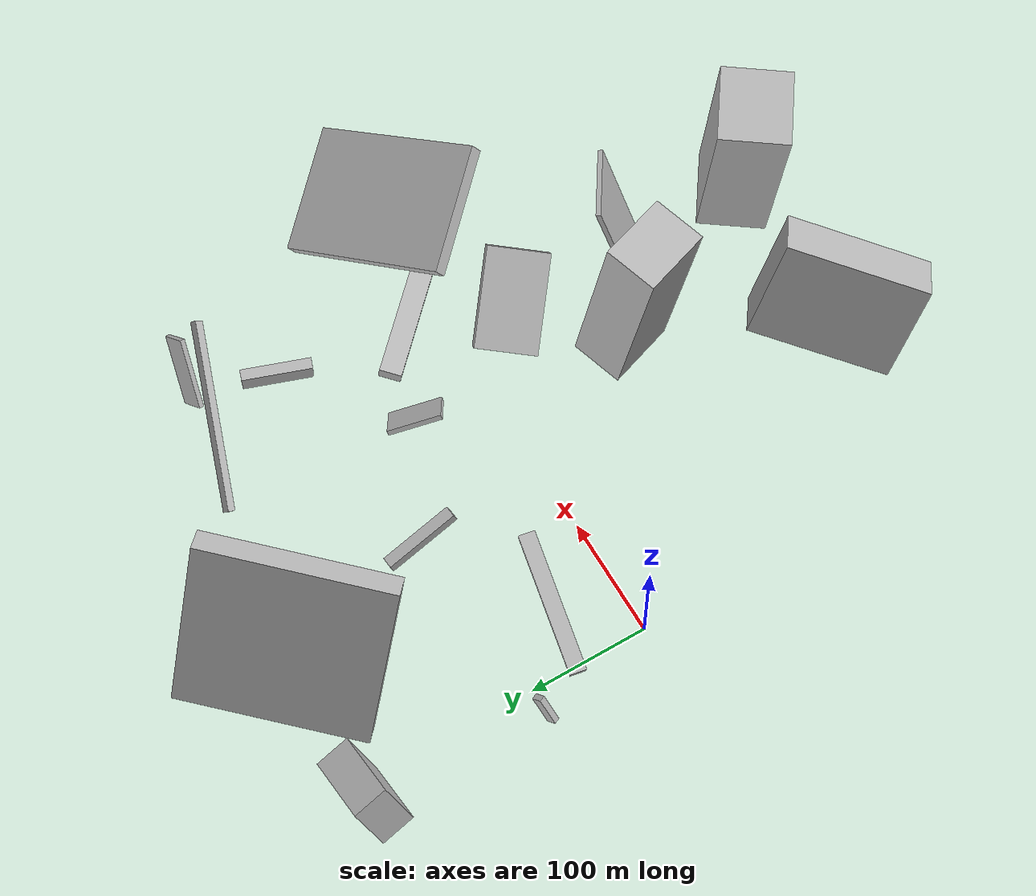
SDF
<sdf version="1.6">
 <world name="default">
  <scene>
   <sky><clouds><speed>12</speed></clouds></sky>
   <ambient>0.4 0.4 0.4 1</ambient>
   <background>0.7 0.7 0.7 1</background>
   <shadows>1</shadows>
  </scene>
  <gravity>0 0 -9.8066</gravity>
  <magnetic_field>6e-06 2.3e-05 -4.2e-05</magnetic_field>
  <physics default="0" name="default_physics" type="ode">
   <ode>
    <solver>
     <type>quick</type>
     <iters>10</iters>
     <sor>1.0</sor>
     <use_dynamic_moi_rescaling>0</use_dynamic_moi_rescaling>
    </solver>
    <constraints>
     <cfm>0</cfm>
     <erp>0.2</erp>
     <contact_max_correcting_vel>100</contact_max_correcting_vel>
     <contact_surface_layer>0.001</contact_surface_layer>
    </constraints>
   </ode>
   <max_step_size>0.004</max_step_size>
   <real_time_factor>1</real_time_factor>
   <real_time_update_rate>250</real_time_update_rate>
  </physics>
  <light name="sun" type="directional">
   <pose>0 0 10 0 0 0</pose>
   <diffuse>0.8 0.8 0.8 1</diffuse>
   <specular>0.2 0.2 0.2 1</specular>
   <attenuation>
    <range>1000</range>
    <constant>0.9</constant>
    <linear>0.01</linear>
    <quadratic>0.001</quadratic>
   </attenuation>
   <direction>-0.5 0.1 -0.9</direction>
  </light>
  <model name="building_1">
   <static>0</static>
   <pose>144.06554316331273 -285.0393407273974 20.557583342746845 1.6673200679724427 -0.23788246221843423 2.192089391238347</pose>
   <link name="link">
    <gravity>0</gravity>
    <pose>0 0 14.5 0 0 0</pose>
    <collision name="collision"><geometry><box><size>4 34 29</size></box></geometry></collision>
    <visual name="visual">
     <cast_shadows>0</cast_shadows>
     <geometry><box><size>4 34 29</size></box></geometry>
     <material>
      <script>
       <uri>model://HANNAS_wall/materials/scripts</uri>
       <uri>model://HANNAS_wall/materials/textures</uri>
       <name>vrc/HANNAS_wall</name>
      </script>
     </material>
    </visual>
   </link>
  </model>
  <model name="building_2">
   <static>0</static>
   <pose>355.446683232042 43.35744427238893 69.85210948404222 -1.2020113602157423 -0.42680287770415803 -2.554378521825107</pose>
   <link name="link">
    <gravity>0</gravity>
    <pose>0 0 51.5 0 0 0</pose>
    <collision name="collision"><geometry><box><size>150 12 103</size></box></geometry></collision>
    <visual name="visual">
     <cast_shadows>0</cast_shadows>
     <geometry><box><size>150 12 103</size></box></geometry>
     <material>
      <script>
       <uri>model://HANNAS_wall/materials/scripts</uri>
       <uri>model://HANNAS_wall/materials/textures</uri>
       <name>vrc/HANNAS_wall</name>
      </script>
     </material>
    </visual>
   </link>
  </model>
  <model name="building_3">
   <static>0</static>
   <pose>339.1404586242422 167.40391221170665 17.862097346216853 1.5828814717228803 -0.23100107456263266 -0.3331681251825361</pose>
   <link name="link">
    <gravity>0</gravity>
    <pose>0 0 28.5 0 0 0</pose>
    <collision name="collision"><geometry><box><size>9 25 57</size></box></geometry></collision>
    <visual name="visual">
     <cast_shadows>0</cast_shadows>
     <geometry><box><size>9 25 57</size></box></geometry>
     <material>
      <script>
       <uri>model://HANNAS_wall/materials/scripts</uri>
       <uri>model://HANNAS_wall/materials/textures</uri>
       <name>vrc/HANNAS_wall</name>
      </script>
     </material>
    </visual>
   </link>
  </model>
  <model name="building_4">
   <static>0</static>
   <pose>45.40919244431496 193.94430265775216 83.16667262906707 1.4446398337526434 -0.43803129549741576 2.4631247510847873</pose>
   <link name="link">
    <gravity>0</gravity>
    <pose>0 0 75.0 0 0 0</pose>
    <collision name="collision"><geometry><box><size>20 150 150</size></box></geometry></collision>
    <visual name="visual">
     <cast_shadows>0</cast_shadows>
     <geometry><box><size>20 150 150</size></box></geometry>
     <material>
      <script>
       <uri>model://HANNAS_wall/materials/scripts</uri>
       <uri>model://HANNAS_wall/materials/textures</uri>
       <name>vrc/HANNAS_wall</name>
      </script>
     </material>
    </visual>
   </link>
  </model>
  <model name="building_5">
   <static>0</static>
   <pose>370.1755689908143 -27.22185725013969 38.62904509164919 1.156230760620394 -1.4028140543516339 -1.9204796750713937</pose>
   <link name="link">
    <gravity>0</gravity>
    <pose>0 0 71.5 0 0 0</pose>
    <collision name="collision"><geometry><box><size>9 18 143</size></box></geometry></collision>
    <visual name="visual">
     <cast_shadows>0</cast_shadows>
     <geometry><box><size>9 18 143</size></box></geometry>
     <material>
      <script>
       <uri>model://HANNAS_wall/materials/scripts</uri>
       <uri>model://HANNAS_wall/materials/textures</uri>
       <name>vrc/HANNAS_wall</name>
      </script>
     </material>
    </visual>
   </link>
  </model>
  <model name="building_6">
   <static>0</static>
   <pose>286.6925635139877 -144.96020046405283 72.94835882348437 -0.09964875886765767 -1.3177549750232243 1.0947226266429262</pose>
   <link name="link">
    <gravity>0</gravity>
    <pose>0 0 2.0 0 0 0</pose>
    <collision name="collision"><geometry><box><size>114 59 4</size></box></geometry></collision>
    <visual name="visual">
     <cast_shadows>0</cast_shadows>
     <geometry><box><size>114 59 4</size></box></geometry>
     <material>
      <script>
       <uri>model://HANNAS_wall/materials/scripts</uri>
       <uri>model://HANNAS_wall/materials/textures</uri>
       <name>vrc/HANNAS_wall</name>
      </script>
     </material>
    </visual>
   </link>
  </model>
  <model name="building_7">
   <static>0</static>
   <pose>175.93852212318262 -81.8488428875617 107.62385818573408 0.13902266245292688 0.051289616728787714 -1.2189937352650215</pose>
   <link name="link">
    <gravity>0</gravity>
    <pose>0 0 75.0 0 0 0</pose>
    <collision name="collision"><geometry><box><size>57 42 150</size></box></geometry></collision>
    <visual name="visual">
     <cast_shadows>0</cast_shadows>
     <geometry><box><size>57 42 150</size></box></geometry>
     <material>
      <script>
       <uri>model://HANNAS_wall/materials/scripts</uri>
       <uri>model://HANNAS_wall/materials/textures</uri>
       <name>vrc/HANNAS_wall</name>
      </script>
     </material>
    </visual>
   </link>
  </model>
  <model name="building_8">
   <static>0</static>
   <pose>-51.92691327711383 250.63170119698293 73.54561451408819 1.9611103851382885 0.23913477233510574 1.7122731953357833</pose>
   <link name="link">
    <gravity>0</gravity>
    <pose>0 0 29.5 0 0 0</pose>
    <collision name="collision"><geometry><box><size>28 44 59</size></box></geometry></collision>
    <visual name="visual">
     <cast_shadows>0</cast_shadows>
     <geometry><box><size>28 44 59</size></box></geometry>
     <material>
      <script>
       <uri>model://HANNAS_wall/materials/scripts</uri>
       <uri>model://HANNAS_wall/materials/textures</uri>
       <name>vrc/HANNAS_wall</name>
      </script>
     </material>
    </visual>
   </link>
  </model>
  <model name="building_9">
   <static>0</static>
   <pose>78.97683719137541 57.598853030702514 89.71332489822902 -2.766192326777216 -1.4172239527993853 2.5778740804983427</pose>
   <link name="link">
    <gravity>0</gravity>
    <pose>0 0 55.5 0 0 0</pose>
    <collision name="collision"><geometry><box><size>4 13 111</size></box></geometry></collision>
    <visual name="visual">
     <cast_shadows>0</cast_shadows>
     <geometry><box><size>4 13 111</size></box></geometry>
     <material>
      <script>
       <uri>model://HANNAS_wall/materials/scripts</uri>
       <uri>model://HANNAS_wall/materials/textures</uri>
       <name>vrc/HANNAS_wall</name>
      </script>
     </material>
    </visual>
   </link>
  </model>
  <model name="building_10">
   <static>0</static>
   <pose>358.5584567561067 207.0801542994869 36.46568222749945 1.9241457205679213 0.6374103836919633 0.33874370068434734</pose>
   <link name="link">
    <gravity>0</gravity>
    <pose>0 0 2.0 0 0 0</pose>
    <collision name="collision"><geometry><box><size>23 58 4</size></box></geometry></collision>
    <visual name="visual">
     <cast_shadows>0</cast_shadows>
     <geometry><box><size>23 58 4</size></box></geometry>
     <material>
      <script>
       <uri>model://HANNAS_wall/materials/scripts</uri>
       <uri>model://HANNAS_wall/materials/textures</uri>
       <name>vrc/HANNAS_wall</name>
      </script>
     </material>
    </visual>
   </link>
  </model>
  <model name="building_11">
   <static>0</static>
   <pose>245.37502770319577 -55.73698963271195 79.71875381996826 -1.4038401060480061 -0.5703463490727186 -0.6924232850489174</pose>
   <link name="link">
    <gravity>0</gravity>
    <pose>0 0 25.0 0 0 0</pose>
    <collision name="collision"><geometry><box><size>80 25 50</size></box></geometry></collision>
    <visual name="visual">
     <cast_shadows>0</cast_shadows>
     <geometry><box><size>80 25 50</size></box></geometry>
     <material>
      <script>
       <uri>model://HANNAS_wall/materials/scripts</uri>
       <uri>model://HANNAS_wall/materials/textures</uri>
       <name>vrc/HANNAS_wall</name>
      </script>
     </material>
    </visual>
   </link>
  </model>
  <model name="building_12">
   <static>0</static>
   <pose>149.41191118499546 113.0423838995492 13.46537545597768 2.853005943913371 0.12526087960991747 0.0581004647511589</pose>
   <link name="link">
    <gravity>0</gravity>
    <pose>0 0 4.0 0 0 0</pose>
    <collision name="collision"><geometry><box><size>10 63 8</size></box></geometry></collision>
    <visual name="visual">
     <cast_shadows>0</cast_shadows>
     <geometry><box><size>10 63 8</size></box></geometry>
     <material>
      <script>
       <uri>model://HANNAS_wall/materials/scripts</uri>
       <uri>model://HANNAS_wall/materials/textures</uri>
       <name>vrc/HANNAS_wall</name>
      </script>
     </material>
    </visual>
   </link>
  </model>
  <model name="building_13">
   <static>0</static>
   <pose>306.2692717840407 203.86079708056522 45.92166081923186 -2.39515420542799 -0.413194053091494 -0.3417737094966588</pose>
   <link name="link">
    <gravity>0</gravity>
    <pose>0 0 3.0 0 0 0</pose>
    <collision name="collision"><geometry><box><size>150 7 6</size></box></geometry></collision>
    <visual name="visual">
     <cast_shadows>0</cast_shadows>
     <geometry><box><size>150 7 6</size></box></geometry>
     <material>
      <script>
       <uri>model://HANNAS_wall/materials/scripts</uri>
       <uri>model://HANNAS_wall/materials/textures</uri>
       <name>vrc/HANNAS_wall</name>
      </script>
     </material>
    </visual>
   </link>
  </model>
  <model name="building_14">
   <static>0</static>
   <pose>255.24090457018679 -235.79981091256266 84.74319029765176 0.05540365464717692 -0.134637562991882 -0.6013388318826821</pose>
   <link name="link">
    <gravity>0</gravity>
    <pose>0 0 75.0 0 0 0</pose>
    <collision name="collision"><geometry><box><size>60 55 150</size></box></geometry></collision>
    <visual name="visual">
     <cast_shadows>0</cast_shadows>
     <geometry><box><size>60 55 150</size></box></geometry>
     <material>
      <script>
       <uri>model://HANNAS_wall/materials/scripts</uri>
       <uri>model://HANNAS_wall/materials/textures</uri>
       <name>vrc/HANNAS_wall</name>
      </script>
     </material>
    </visual>
   </link>
  </model>
  <model name="building_15">
   <static>0</static>
   <pose>114.30977961010959 -224.7116777611203 75.75882643149693 0.4021728519815539 -0.25420738577829005 0.8260568570641689</pose>
   <link name="link">
    <gravity>0</gravity>
    <pose>0 0 42.0 0 0 0</pose>
    <collision name="collision"><geometry><box><size>116 41 84</size></box></geometry></collision>
    <visual name="visual">
     <cast_shadows>0</cast_shadows>
     <geometry><box><size>116 41 84</size></box></geometry>
     <material>
      <script>
       <uri>model://HANNAS_wall/materials/scripts</uri>
       <uri>model://HANNAS_wall/materials/textures</uri>
       <name>vrc/HANNAS_wall</name>
      </script>
     </material>
    </visual>
   </link>
  </model>
  <model name="building_16">
   <static>0</static>
   <pose>159.46527784708263 -274.30382421030436 44.60298380831265 -2.8107747030993497 -1.1527568553204404 3.0132422879942298</pose>
   <link name="link">
    <gravity>0</gravity>
    <pose>0 0 9.0 0 0 0</pose>
    <collision name="collision"><geometry><box><size>4 42 18</size></box></geometry></collision>
    <visual name="visual">
     <cast_shadows>0</cast_shadows>
     <geometry><box><size>4 42 18</size></box></geometry>
     <material>
      <script>
       <uri>model://HANNAS_wall/materials/scripts</uri>
       <uri>model://HANNAS_wall/materials/textures</uri>
       <name>vrc/HANNAS_wall</name>
      </script>
     </material>
    </visual>
   </link>
  </model>
  <model name="building_17">
   <static>0</static>
   <pose>-41.41785062625806 106.14754636573194 45.21648427106285 0.5714958482039856 -0.055614525238019796 2.005301987613701</pose>
   <link name="link">
    <gravity>0</gravity>
    <pose>0 0 13.0 0 0 0</pose>
    <collision name="collision"><geometry><box><size>5 8 26</size></box></geometry></collision>
    <visual name="visual">
     <cast_shadows>0</cast_shadows>
     <geometry><box><size>5 8 26</size></box></geometry>
     <material>
      <script>
       <uri>model://HANNAS_wall/materials/scripts</uri>
       <uri>model://HANNAS_wall/materials/textures</uri>
       <name>vrc/HANNAS_wall</name>
      </script>
     </material>
    </visual>
   </link>
  </model>
  <model name="building_18">
   <static>0</static>
   <pose>230.73262173460694 92.08766361048706 46.90987949078151 -1.0995484725461226 0.9292151026125098 -3.1054359362070065</pose>
   <link name="link">
    <gravity>0</gravity>
    <pose>0 0 22.0 0 0 0</pose>
    <collision name="collision"><geometry><box><size>4 28 44</size></box></geometry></collision>
    <visual name="visual">
     <cast_shadows>0</cast_shadows>
     <geometry><box><size>4 28 44</size></box></geometry>
     <material>
      <script>
       <uri>model://HANNAS_wall/materials/scripts</uri>
       <uri>model://HANNAS_wall/materials/textures</uri>
       <name>vrc/HANNAS_wall</name>
      </script>
     </material>
    </visual>
   </link>
  </model>
 </world>
</sdf>
